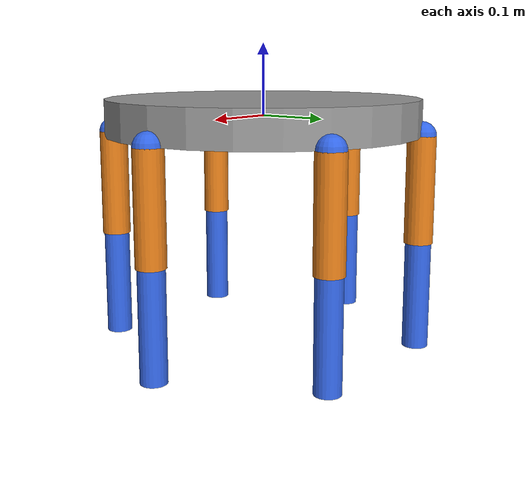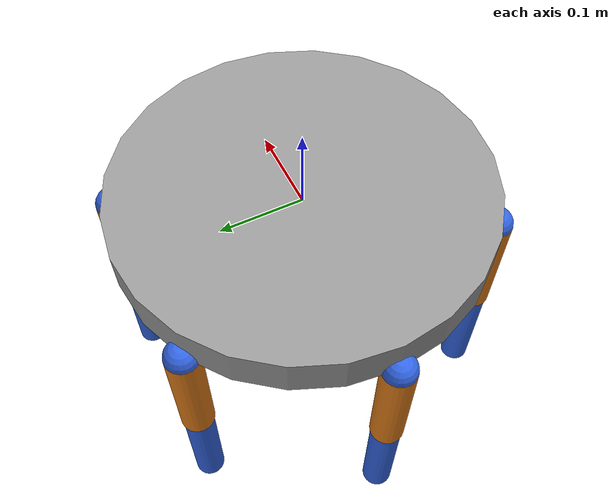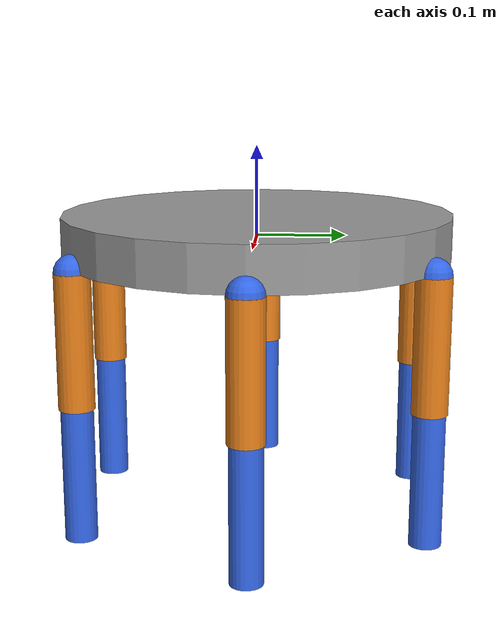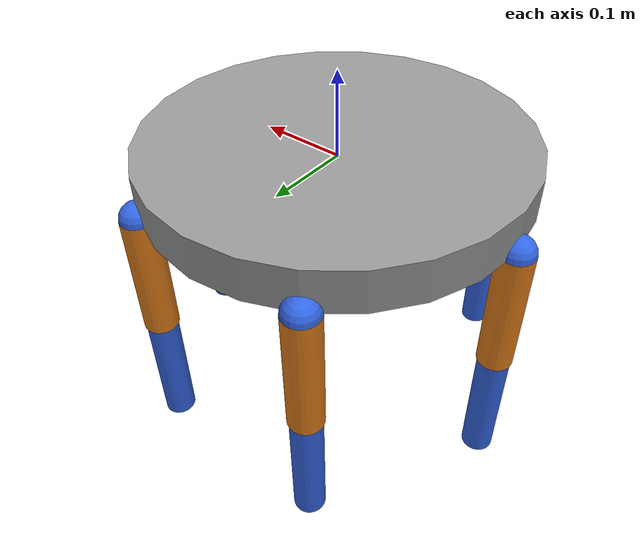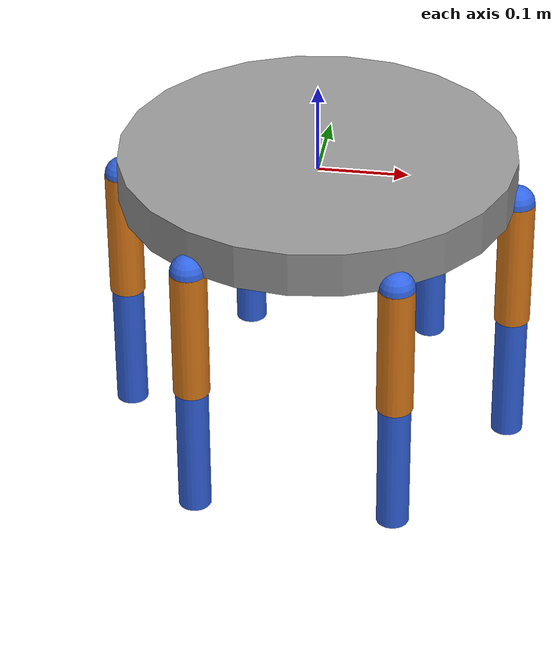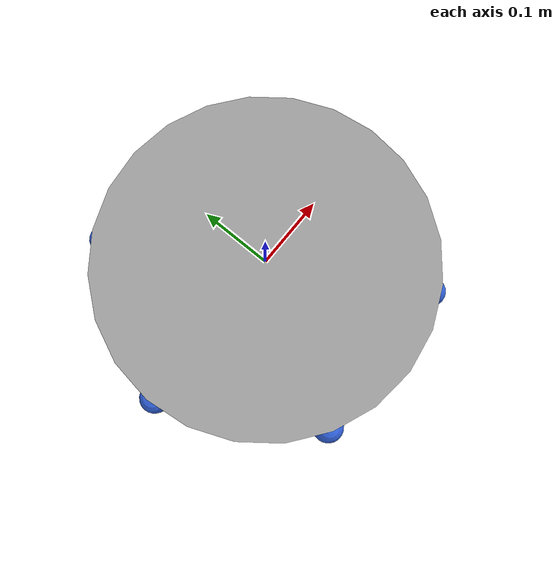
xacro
<?xml version="1.0"?>
<robot name="hexapod" xmlns:xacro="http://www.ros.org/wiki/xacro">

  <xacro:property name="body_radius" value="0.22"/>
  <xacro:property name="body_height" value="0.05"/>
  <xacro:property name="sqrt3_half" value="0.8660254"/>

  <xacro:property name="leg_length1" value="0.15"/>
  <xacro:property name="leg_length2" value="0.15"/>
  <xacro:property name="leg_radius"  value="0.02"/>

  <xacro:property name="body_mass" value="2.0"/>
  <xacro:property name="hip_mass"  value="0.05"/>
  <xacro:property name="thigh_mass" value="0.2"/>
  <xacro:property name="calf_mass"  value="0.15"/>

  <material name="gray">
    <color rgba="0.6 0.6 0.6 1.0"/>
  </material>
  <material name="blue">
    <color rgba="0.2 0.4 0.9 1.0"/>
  </material>
  <material name="orange">
    <color rgba="0.9 0.5 0.1 1.0"/>
  </material>

  <link name="base_link">
    <visual>
      <geometry>
        <cylinder radius="${body_radius}" length="${body_height}"/>
      </geometry>
      <material name="gray"/>
    </visual>

    <collision>
      <geometry>
        <cylinder radius="${body_radius}" length="${body_height}"/>
      </geometry>
    </collision>

    <inertial>
      <origin xyz="0 0 0"/>
      <mass value="${body_mass}"/>
      <inertia
        ixx="0.02" ixy="0.0" ixz="0.0"
        iyy="0.02" iyz="0.0"
        izz="0.03"/>
    </inertial>
  </link>

  <xacro:macro name="leg" params="name x y yaw">

    <link name="${name}_hip">
      <visual>
        <geometry>
          <sphere radius="0.02"/>
        </geometry>
        <material name="blue"/>
      </visual>
      <collision>
        <geometry>
          <sphere radius="0.02"/>
        </geometry>
      </collision>
      <inertial>
        <origin xyz="0 0 0"/>
        <mass value="${hip_mass}"/>
        <inertia
          ixx="0.0001" ixy="0.0" ixz="0.0"
          iyy="0.0001" iyz="0.0"
          izz="0.0001"/>
      </inertial>
    </link>

    <joint name="${name}_hip_yaw" type="revolute">
      <parent link="base_link"/>
      <child link="${name}_hip"/>
      <origin xyz="${x} ${y} -${body_height/2}" rpy="0 0 ${yaw}"/>
      <axis xyz="0 0 1"/>
      <limit effort="10" velocity="10" lower="-1.57" upper="1.57"/>
      <dynamics damping="0.1" friction="0.05"/>
    </joint>

    <link name="${name}_thigh">
      <visual>
        <origin xyz="0 0 -${leg_length1/2}" rpy="0 0 0"/>
        <geometry>
          <cylinder radius="${leg_radius}" length="${leg_length1}"/>
        </geometry>
        <material name="orange"/>
      </visual>
      <collision>
        <origin xyz="0 0 -${leg_length1/2}" rpy="0 0 0"/>
        <geometry>
          <cylinder radius="${leg_radius}" length="${leg_length1}"/>
        </geometry>
      </collision>
      <inertial>
        <origin xyz="0 0 -${leg_length1/2}"/>
        <mass value="${thigh_mass}"/>
        <inertia
          ixx="0.001" ixy="0.0" ixz="0.0"
          iyy="0.001" iyz="0.0"
          izz="0.0002"/>
      </inertial>
    </link>

    <joint name="${name}_hip_pitch" type="revolute">
      <parent link="${name}_hip"/>
      <child link="${name}_thigh"/>
      <origin xyz="0 0 0" rpy="0 0 0"/>
      <axis xyz="0 1 0"/>
      <limit effort="10" velocity="10" lower="-1.2" upper="1.2"/>
      <dynamics damping="0.1" friction="0.05"/>
    </joint>

    <link name="${name}_calf">
      <visual>
        <origin xyz="0 0 -${leg_length2/2}" rpy="0 0 0"/>
        <geometry>
          <cylinder radius="${leg_radius*0.9}" length="${leg_length2}"/>
        </geometry>
        <material name="blue"/>
      </visual>
      <collision>
        <origin xyz="0 0 -${leg_length2/2}" rpy="0 0 0"/>
        <geometry>
          <cylinder radius="${leg_radius*0.9}" length="${leg_length2}"/>
        </geometry>
      </collision>
      <inertial>
        <origin xyz="0 0 -${leg_length2/2}"/>
        <mass value="${calf_mass}"/>
        <inertia
          ixx="0.0008" ixy="0.0" ixz="0.0"
          iyy="0.0008" iyz="0.0"
          izz="0.00015"/>
      </inertial>
    </link>

    <joint name="${name}_knee" type="revolute">
      <parent link="${name}_thigh"/>
      <child link="${name}_calf"/>
      <origin xyz="0 0 -${leg_length1}" rpy="0 0 0"/>
      <axis xyz="0 1 0"/>
      <limit effort="10" velocity="10" lower="-2.0" upper="0.0"/>
      <dynamics damping="0.1" friction="0.05"/>
    </joint>

  </xacro:macro>

  <xacro:leg name="leg1" x="${ body_radius }"       y="0.0"                            yaw="0.0"/>
  <xacro:leg name="leg2" x="${ body_radius/2 }"     y="${ body_radius*sqrt3_half }"    yaw="1.0472"/>
  <xacro:leg name="leg3" x="${ -body_radius/2 }"    y="${ body_radius*sqrt3_half }"    yaw="2.0944"/>
  <xacro:leg name="leg4" x="${ -body_radius }"      y="0.0"                            yaw="3.1416"/>
  <xacro:leg name="leg5" x="${ -body_radius/2 }"    y="${ -body_radius*sqrt3_half }"   yaw="-2.0944"/>
  <xacro:leg name="leg6" x="${ body_radius/2 }"     y="${ -body_radius*sqrt3_half }"   yaw="-1.0472"/>

</robot>
